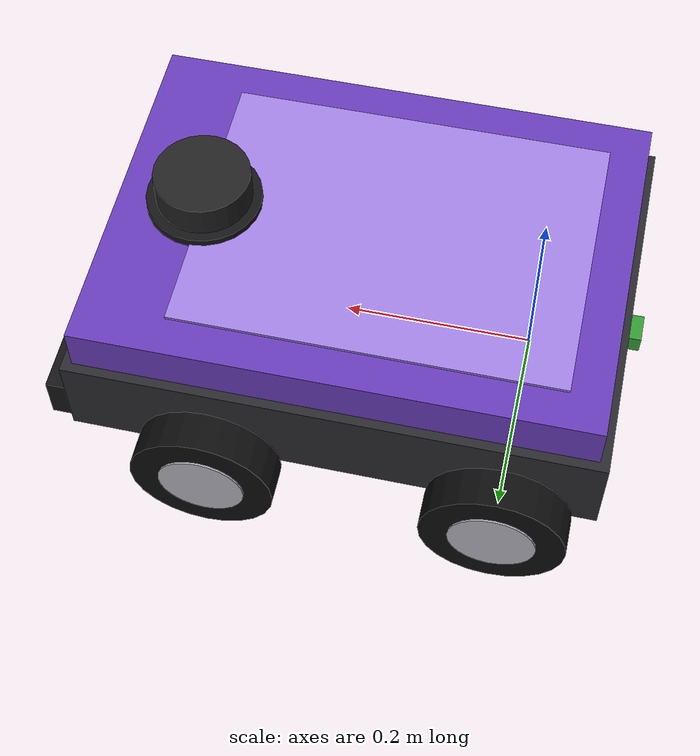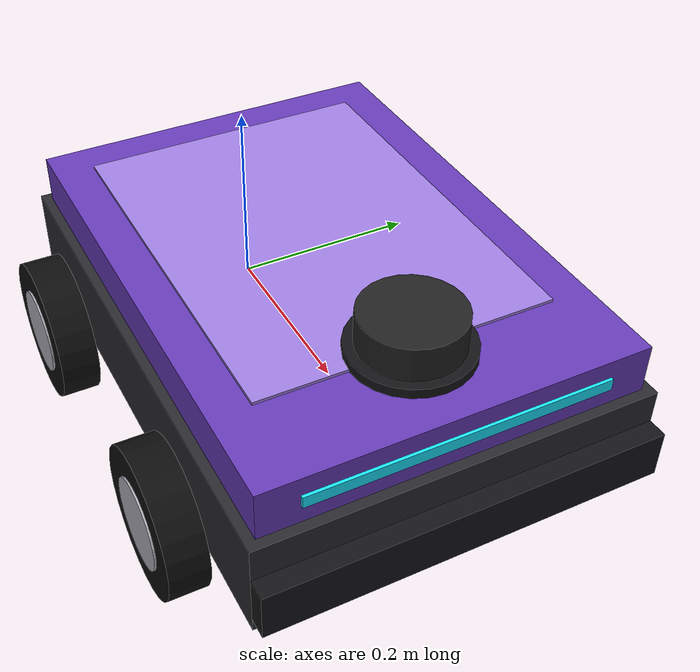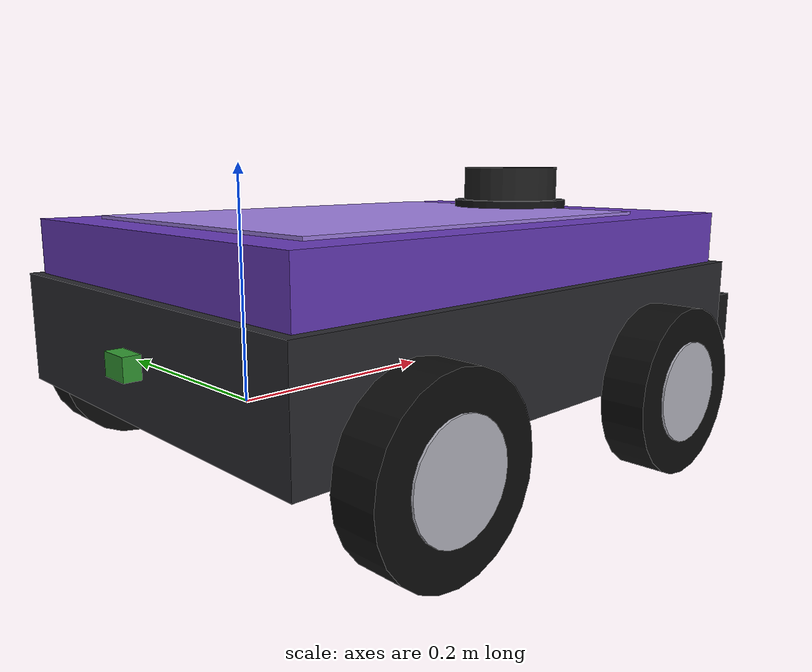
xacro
<?xml version="1.0"?>
<robot name="rosnav_bot" xmlns:xacro="http://www.ros.org/wiki/xacro">

    <xacro:include filename="robot_core.xacro" />

    <xacro:include filename="gazebo_control.xacro" />

    <xacro:arg name="lidar_type" default="2d"/>
    <xacro:if value="${'$(arg lidar_type)' == '3d'}">
        <xacro:include filename="lidar3d.xacro" />
    </xacro:if>
    <xacro:unless value="${'$(arg lidar_type)' == '3d'}">
        <xacro:include filename="lidar.xacro" />
    </xacro:unless>

    <xacro:include filename="imu.xacro" />
    <xacro:if value="${'$(optenv ROSNAV_GPS 0)' == '1'}">
        <xacro:include filename="gps.xacro" />
    </xacro:if>

    <xacro:arg name="enable_camera" default="false"/>
    <xacro:arg name="enable_rgbd" default="false"/>
    <!-- RGBD replaces RGB so YOLO/ArUco and VSLAM share one camera_link. -->
    <xacro:if value="${'$(arg enable_rgbd)' == 'true'}">
        <xacro:include filename="rgbd_camera.xacro" />
    </xacro:if>
    <xacro:unless value="${'$(arg enable_rgbd)' == 'true'}">
        <xacro:if value="${'$(arg enable_camera)' == 'true'}">
            <xacro:include filename="camera.xacro" />
        </xacro:if>
    </xacro:unless>

</robot>

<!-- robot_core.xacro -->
<robot name="car_robot" xmlns:xacro="http://www.ros.org/wiki/xacro" xmlns:gazebo="http://gazebo.apache.org/xmlns/gazebo">

  <xacro:include filename="inertial_macros.xacro" />

  <!-- Base Link -->
  <link name="base_link"/>
  <link name="base_footprint">
    <collision>
      <geometry>
        <box size="0.55 0.4 0.01"/>
      </geometry>
    </collision>
  </link>

  <joint name="base_footprint_joint" type="fixed">
    <parent link="base_link"/>
    <child link="base_footprint"/>
    <origin xyz="0 0 -0.05"/>
  </joint>

  <!-- Chassis -->
  <joint name="chassis_joint" type="fixed">
    <parent link="base_link"/>
    <child link="chassis"/>
    <origin xyz="-0.1 0 0"/>
  </joint>

  <link name="chassis">
    <!-- Lower skirt -->
    <visual>
      <origin xyz="0.275 0 0.05"/>
      <geometry><box size="0.55 0.40 0.10"/></geometry>
      <material name="skirt_material"><color rgba="0.16 0.16 0.18 1.0"/></material>
    </visual>
    <!-- Upper shell -->
    <visual>
      <origin xyz="0.275 0 0.125"/>
      <geometry><box size="0.53 0.38 0.05"/></geometry>
      <material name="chassis_material"><color rgba="0.40 0.23 0.72 1.0"/></material>
    </visual>
    <!-- Top accent plate -->
    <visual>
      <origin xyz="0.25 0 0.151"/>
      <geometry><box size="0.40 0.30 0.004"/></geometry>
      <material name="accent_material"><color rgba="0.62 0.50 0.88 1.0"/></material>
    </visual>
    <!-- Front bumper -->
    <visual>
      <origin xyz="0.56 0 0.04"/>
      <geometry><box size="0.02 0.40 0.05"/></geometry>
      <material name="bumper_material"><color rgba="0.08 0.08 0.09 1.0"/></material>
    </visual>
    <!-- Front status LED strip -->
    <visual>
      <origin xyz="0.541 0 0.125"/>
      <geometry><box size="0.004 0.30 0.012"/></geometry>
      <material name="led_material"><color rgba="0.1 0.9 1.0 1.0"/></material>
    </visual>
    <!-- Lidar mount ring -->
    <visual>
      <origin xyz="0.45 0 0.1555"/>
      <geometry><cylinder radius="0.06" length="0.01"/></geometry>
      <material name="bumper_material"><color rgba="0.08 0.08 0.09 1.0"/></material>
    </visual>
    <collision>
      <origin xyz="0.275 0 0.075"/>
      <geometry>
        <box size="0.55 0.34 0.15"/>
      </geometry>
    </collision>
      <xacro:inertial_box mass="0.5" x="0.55" y="0.4" z="0.15">
            <origin xyz="0.275 0 0.075" rpy="0 0 0"/>
         </xacro:inertial_box>
  </link>

  <!-- Rear Wheels -->
  <joint name="left_wheel_joint" type="continuous">
    <parent link="base_link"/>
    <child link="left_wheel"/>
    <origin xyz="0 0.225 0" rpy="-1.57 0 0"/>
    <axis xyz="0 0 1"/>
  </joint>

  <link name="left_wheel">
    <visual>
      <geometry>
        <cylinder radius="0.075" length="0.04"/>
      </geometry>
      <material name="wheel_material">
        <color rgba="0.05 0.05 0.05 1.0"/>
      </material>
    </visual>
    <visual>
      <geometry><cylinder radius="0.045" length="0.044"/></geometry>
      <material name="hub_material"><color rgba="0.70 0.70 0.74 1.0"/></material>
    </visual>
    <collision>
      <geometry>
        <sphere radius="0.075"/>
      </geometry>
    </collision>
        <xacro:inertial_cylinder mass="0.1" length="0.04" radius="0.075">
            <origin xyz="0 0 0" rpy="0 0 0"/>
         </xacro:inertial_cylinder>
  </link>

  <joint name="right_wheel_joint" type="continuous">
    <parent link="base_link"/>
    <child link="right_wheel"/>
    <origin xyz="0 -0.225 0" rpy="1.57 0 0"/>
    <axis xyz="0 0 -1"/>
  </joint>

  <link name="right_wheel">
    <visual>
      <geometry>
        <cylinder radius="0.075" length="0.04"/>
      </geometry>
      <material name="wheel_material">
        <color rgba="0.05 0.05 0.05 1.0"/>
      </material>
    </visual>
    <visual>
      <geometry><cylinder radius="0.045" length="0.044"/></geometry>
      <material name="hub_material"><color rgba="0.70 0.70 0.74 1.0"/></material>
    </visual>
    <collision>
      <geometry>
        <sphere radius="0.075"/>
      </geometry>
    </collision>
        <xacro:inertial_cylinder mass="0.1" length="0.04" radius="0.075">
            <origin xyz="0 0 0" rpy="0 0 0"/>
         </xacro:inertial_cylinder>
  </link>

  <!-- Front Wheels -->
  <joint name="left_front_wheel_joint" type="fixed">
    <parent link="base_link"/>
    <child link="left_front_wheel"/>
    <origin xyz="0.3 0.225 0" rpy="-1.57 0 0"/>
    <axis xyz="0 0 1"/>
  </joint>

  <link name="left_front_wheel">
    <visual>
      <geometry>
        <cylinder radius="0.075" length="0.04"/>
      </geometry>
      <material name="wheel_material">
        <color rgba="0.05 0.05 0.05 1.0"/>
      </material>
    </visual>
    <visual>
      <geometry><cylinder radius="0.045" length="0.044"/></geometry>
      <material name="hub_material"><color rgba="0.70 0.70 0.74 1.0"/></material>
    </visual>
    <collision>
      <geometry>
        <sphere radius="0.075"/>
      </geometry>
    </collision>
        <xacro:inertial_cylinder mass="0.1" length="0.04" radius="0.075">
            <origin xyz="0 0 0" rpy="0 0 0"/>
         </xacro:inertial_cylinder>
  </link>

  <joint name="right_front_wheel_joint" type="fixed">
    <parent link="base_link"/>
    <child link="right_front_wheel"/>
    <origin xyz="0.3 -0.225 0" rpy="1.57 0 0"/>
    <axis xyz="0 0 -1"/>
  </joint>

  <link name="right_front_wheel">
    <visual>
      <geometry>
        <cylinder radius="0.075" length="0.04"/>
      </geometry>
      <material name="wheel_material">
        <color rgba="0.05 0.05 0.05 1.0"/>
      </material>
    </visual>
    <visual>
      <geometry><cylinder radius="0.045" length="0.044"/></geometry>
      <material name="hub_material"><color rgba="0.70 0.70 0.74 1.0"/></material>
    </visual>
    <collision>
      <geometry>
        <sphere radius="0.075"/>
      </geometry>
    </collision>
        <xacro:inertial_cylinder mass="0.1" length="0.04" radius="0.075">
            <origin xyz="0 0 0" rpy="0 0 0"/>
         </xacro:inertial_cylinder>
  </link>

  <!-- Gazebo Parameters -->
  <gazebo reference="chassis">
    <mu1>1.0</mu1>
    <mu2>1.0</mu2>
  </gazebo>

  <gazebo reference="left_wheel">
    <mu1>1.0</mu1>
    <mu2>1.0</mu2>
  </gazebo>

  <gazebo reference="right_wheel">
    <mu1>1.0</mu1>
    <mu2>1.0</mu2>
  </gazebo>

  <gazebo reference="left_front_wheel">
       <mu1>0.000001</mu1>
         <mu2>0.000001</mu2>
  </gazebo>

  <gazebo reference="right_front_wheel">
     <mu1>0.000001</mu1>
         <mu2>0.000001</mu2>
  </gazebo>

</robot>

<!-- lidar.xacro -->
<robot xmlns:xacro="http://www.ros.org/wiki/xacro" >
   <xacro:arg name="namespace" default=""/>
   <xacro:property name="ns" value="$(arg namespace)"/>
   <joint name="laser_joint" type="fixed">
     <parent link="chassis"/>
     <child link="laser_frame"/>
     <origin xyz="0.45 0 0.175" rpy="0 0 0"/>
   </joint>
   <link name="laser_frame">
      <visual>
         <origin xyz="0 0 0"/>
         <geometry>
            <cylinder length="0.04" radius="0.05"/>
         </geometry>
         <material name="laser_material">
            <color rgba="0.13 0.13 0.13 1.0"/>
         </material>
      </visual>
      <collision>
         <origin xyz="0 0 0"/>
         <geometry>
            <cylinder length="0.04" radius="0.05"/>
         </geometry>
      </collision>
      <xacro:inertial_cylinder mass="0.1" length="0.04" radius="0.05">
         <origin xyz="0 0 0" rpy="0 0 0"/>
      </xacro:inertial_cylinder>
   </link>

   <!-- 2D Lidar New Gazebo Sensor Plugin  -->
   <gazebo reference="laser_frame">
      <sensor name="laser" type="gpu_lidar">
         <pose> 0 0 0 0 0 0 </pose>
         <always_on>true</always_on>
         <visualize>true</visualize>
         <update_rate>10</update_rate>
         <topic>${ns + '/scan' if ns else 'scan'}</topic>
         <gz_frame_id>${ns + '/laser_frame' if ns else 'laser_frame'}</gz_frame_id>
         <lidar>
            <scan>
               <horizontal>
               <samples>360</samples>
               <min_angle>-3.14</min_angle>
               <max_angle>3.14</max_angle>
               </horizontal>
            </scan>
            <range>
               <min>0.3</min>
               <max>12</max>
            </range>
         </lidar>
      </sensor>
   </gazebo>
</robot>

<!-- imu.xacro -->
<robot xmlns:xacro="http://www.ros.org/wiki/xacro">
  <!-- Body-frame IMU for Cartographer / multi-sensor SLAM. Bridged as /imu. -->
  <xacro:arg name="namespace" default=""/>
  <xacro:property name="ns" value="$(arg namespace)"/>

  <joint name="imu_joint" type="fixed">
    <parent link="chassis"/>
    <child link="imu_link"/>
    <origin xyz="0 0 0.05" rpy="0 0 0"/>
  </joint>
  <link name="imu_link">
    <visual>
      <origin xyz="0 0 0"/>
      <geometry>
        <box size="0.03 0.03 0.02"/>
      </geometry>
      <material name="imu_material">
        <color rgba="0.2 0.6 0.2 1.0"/>
      </material>
    </visual>
    <xacro:inertial_box mass="0.01" x="0.03" y="0.03" z="0.02">
      <origin xyz="0 0 0" rpy="0 0 0"/>
    </xacro:inertial_box>
  </link>

  <gazebo reference="imu_link">
    <sensor name="imu_sensor" type="imu">
      <always_on>true</always_on>
      <update_rate>100</update_rate>
      <topic>${ns + '/imu' if ns else 'imu'}</topic>
      <gz_frame_id>${ns + '/imu_link' if ns else 'imu_link'}</gz_frame_id>
      <imu>
        <angular_velocity>
          <x><noise type="gaussian"><mean>0.0</mean><stddev>0.0002</stddev></noise></x>
          <y><noise type="gaussian"><mean>0.0</mean><stddev>0.0002</stddev></noise></y>
          <z><noise type="gaussian"><mean>0.0</mean><stddev>0.0002</stddev></noise></z>
        </angular_velocity>
        <linear_acceleration>
          <x><noise type="gaussian"><mean>0.0</mean><stddev>0.017</stddev></noise></x>
          <y><noise type="gaussian"><mean>0.0</mean><stddev>0.017</stddev></noise></y>
          <z><noise type="gaussian"><mean>0.0</mean><stddev>0.017</stddev></noise></z>
        </linear_acceleration>
      </imu>
    </sensor>
  </gazebo>
</robot>
